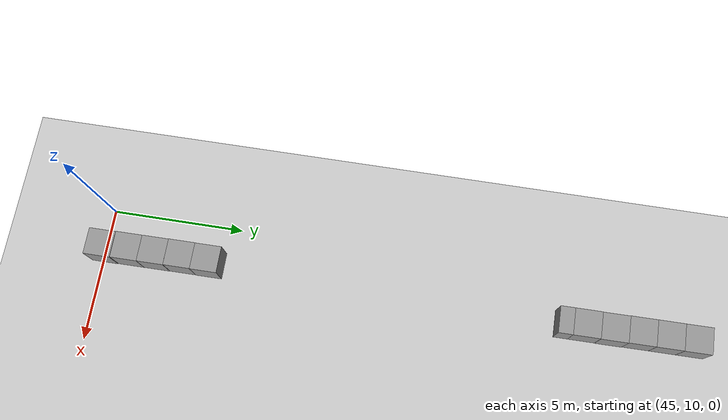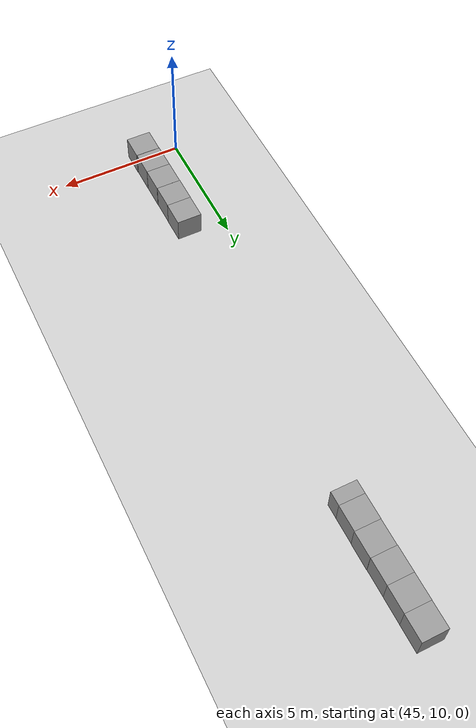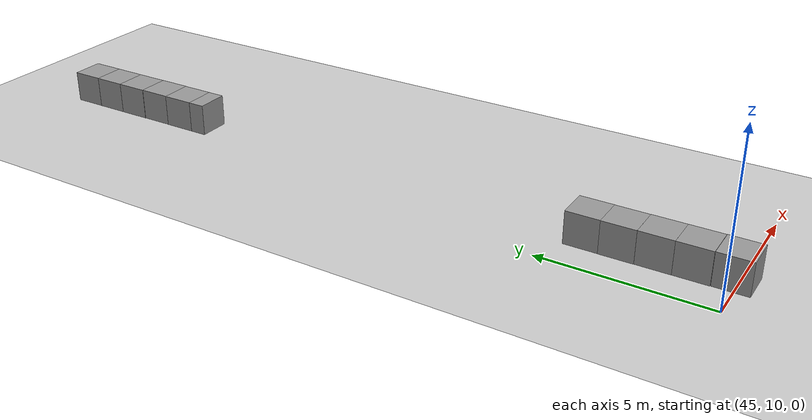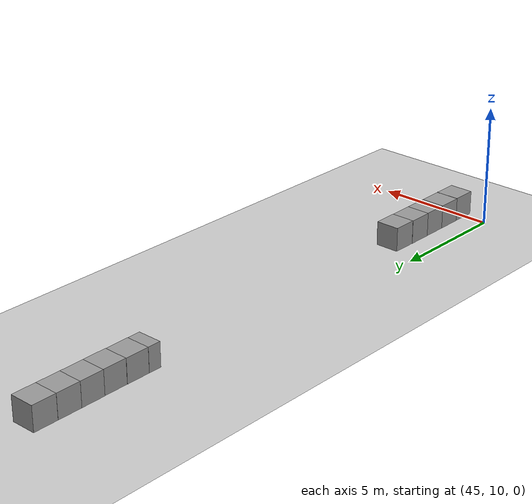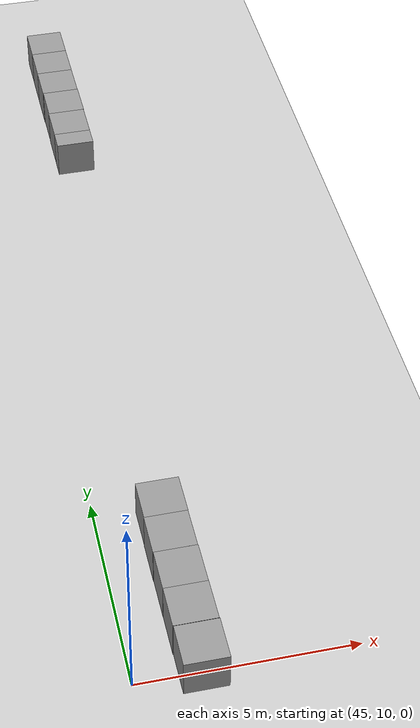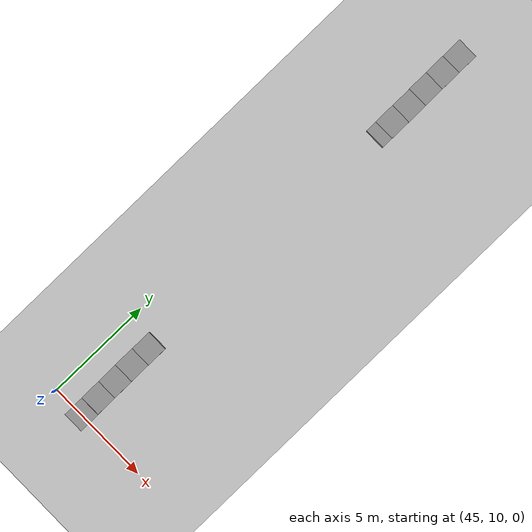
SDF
<sdf version="1.7">
 <world name="default">
  <model name="ground_plane">
   <static>1</static>
   <link name="link">
    <collision name="collision">
     <geometry><plane><normal>0 0 1</normal><size>100 100</size></plane></geometry>
     <surface>
      <contact><collide_bitmask>65535</collide_bitmask></contact>
      <friction><ode><mu>100</mu><mu2>50</mu2></ode></friction>
     </surface>
    </collision>
    <visual name="visual">
     <cast_shadows>0</cast_shadows>
     <geometry><plane><normal>0 0 1</normal><size>100 100</size></plane></geometry>
     <material>
      <script><uri>file://media/materials/scripts/gazebo.material</uri><name>Gazebo/Grey</name></script>
     </material>
    </visual>
   </link>
  </model>
  <model name="unit_box_13">
   <pose>46.717 32.2491 0.499995 1e-05 -0 0.007907</pose>
   <link name="link">
    <inertial>
     <mass>1</mass>
     <inertia>
      <ixx>0.166667</ixx>
      <ixy>0</ixy>
      <ixz>0</ixz>
      <iyy>0.166667</iyy>
      <iyz>0</iyz>
      <izz>0.166667</izz>
     </inertia>
    </inertial>
    <collision name="collision"><geometry><box><size>1 1 1</size></box></geometry></collision>
    <visual name="visual">
     <geometry><box><size>1 1 1</size></box></geometry>
     <material>
      <script><name>Gazebo/Grey</name><uri>file://media/materials/scripts/gazebo.material</uri></script>
     </material>
    </visual>
   </link>
  </model>
  <model name="unit_box_14">
   <pose>46.7218 31.2491 0.499995 1e-05 -0 0.007908</pose>
   <link name="link">
    <inertial>
     <mass>1</mass>
     <inertia>
      <ixx>0.166667</ixx>
      <ixy>0</ixy>
      <ixz>0</ixz>
      <iyy>0.166667</iyy>
      <iyz>0</iyz>
      <izz>0.166667</izz>
     </inertia>
    </inertial>
    <collision name="collision"><geometry><box><size>1 1 1</size></box></geometry></collision>
    <visual name="visual">
     <geometry><box><size>1 1 1</size></box></geometry>
     <material>
      <script><name>Gazebo/Grey</name><uri>file://media/materials/scripts/gazebo.material</uri></script>
     </material>
    </visual>
   </link>
  </model>
  <model name="unit_box_15">
   <pose>46.7286 30.2491 0.499995 1e-05 -0 0.007908</pose>
   <link name="link">
    <inertial>
     <mass>1</mass>
     <inertia>
      <ixx>0.166667</ixx>
      <ixy>0</ixy>
      <ixz>0</ixz>
      <iyy>0.166667</iyy>
      <iyz>0</iyz>
      <izz>0.166667</izz>
     </inertia>
    </inertial>
    <collision name="collision"><geometry><box><size>1 1 1</size></box></geometry></collision>
    <visual name="visual">
     <geometry><box><size>1 1 1</size></box></geometry>
     <material>
      <script><name>Gazebo/Grey</name><uri>file://media/materials/scripts/gazebo.material</uri></script>
     </material>
    </visual>
   </link>
  </model>
  <model name="unit_box_16">
   <pose>46.7446 29.2492 0.499995 1e-05 -0 0.007906</pose>
   <link name="link">
    <inertial>
     <mass>1</mass>
     <inertia>
      <ixx>0.166667</ixx>
      <ixy>0</ixy>
      <ixz>0</ixz>
      <iyy>0.166667</iyy>
      <iyz>0</iyz>
      <izz>0.166667</izz>
     </inertia>
    </inertial>
    <collision name="collision"><geometry><box><size>1 1 1</size></box></geometry></collision>
    <visual name="visual">
     <geometry><box><size>1 1 1</size></box></geometry>
     <material>
      <script><name>Gazebo/Grey</name><uri>file://media/materials/scripts/gazebo.material</uri></script>
     </material>
    </visual>
   </link>
  </model>
  <model name="unit_box_17">
   <pose>46.7436 28.2492 0.499995 -1e-05 0 0.007903</pose>
   <link name="link">
    <inertial>
     <mass>1</mass>
     <inertia>
      <ixx>0.166667</ixx>
      <ixy>0</ixy>
      <ixz>0</ixz>
      <iyy>0.166667</iyy>
      <iyz>0</iyz>
      <izz>0.166667</izz>
     </inertia>
    </inertial>
    <collision name="collision"><geometry><box><size>1 1 1</size></box></geometry></collision>
    <visual name="visual">
     <geometry><box><size>1 1 1</size></box></geometry>
     <material>
      <script><name>Gazebo/Grey</name><uri>file://media/materials/scripts/gazebo.material</uri></script>
     </material>
    </visual>
   </link>
  </model>
  <model name="unit_box_18">
   <pose>46.7467 27.4779 0.5 0 -0 0.007903</pose>
   <link name="link">
    <inertial>
     <mass>1</mass>
     <inertia>
      <ixx>0.166667</ixx>
      <ixy>0</ixy>
      <ixz>0</ixz>
      <iyy>0.166667</iyy>
      <iyz>0</iyz>
      <izz>0.166667</izz>
     </inertia>
    </inertial>
    <collision name="collision"><geometry><box><size>1 0.542564 1</size></box></geometry></collision>
    <visual name="visual">
     <geometry><box><size>1 0.542564 1</size></box></geometry>
     <material>
      <script><name>Gazebo/Grey</name><uri>file://media/materials/scripts/gazebo.material</uri></script>
     </material>
    </visual>
   </link>
  </model>
  <model name="unit_box_24">
   <pose>46.5053 10.072 0.499995 0 1e-05 -1e-06</pose>
   <link name="link">
    <inertial>
     <mass>1</mass>
     <inertia>
      <ixx>0.166667</ixx>
      <ixy>0</ixy>
      <ixz>0</ixz>
      <iyy>0.166667</iyy>
      <iyz>0</iyz>
      <izz>0.166667</izz>
     </inertia>
    </inertial>
    <collision name="collision"><geometry><box><size>1 1 1</size></box></geometry></collision>
    <visual name="visual">
     <geometry><box><size>1 1 1</size></box></geometry>
     <material>
      <script><name>Gazebo/Grey</name><uri>file://media/materials/scripts/gazebo.material</uri></script>
     </material>
    </visual>
   </link>
  </model>
  <model name="unit_box_25">
   <pose>46.4924 11.0799 0.499995 -1e-05 0 0.003417</pose>
   <link name="link">
    <inertial>
     <mass>1</mass>
     <inertia>
      <ixx>0.166667</ixx>
      <ixy>0</ixy>
      <ixz>0</ixz>
      <iyy>0.166667</iyy>
      <iyz>0</iyz>
      <izz>0.166667</izz>
     </inertia>
    </inertial>
    <collision name="collision"><geometry><box><size>1 1 1</size></box></geometry></collision>
    <visual name="visual">
     <geometry><box><size>1 1 1</size></box></geometry>
     <material>
      <script><name>Gazebo/Grey</name><uri>file://media/materials/scripts/gazebo.material</uri></script>
     </material>
    </visual>
   </link>
  </model>
  <model name="unit_box_26">
   <pose>46.4865 12.08 0.499995 0 -1e-05 0.003228</pose>
   <link name="link">
    <inertial>
     <mass>1</mass>
     <inertia>
      <ixx>0.166667</ixx>
      <ixy>0</ixy>
      <ixz>0</ixz>
      <iyy>0.166667</iyy>
      <iyz>0</iyz>
      <izz>0.166667</izz>
     </inertia>
    </inertial>
    <collision name="collision"><geometry><box><size>1 1 1</size></box></geometry></collision>
    <visual name="visual">
     <geometry><box><size>1 1 1</size></box></geometry>
     <material>
      <script><name>Gazebo/Grey</name><uri>file://media/materials/scripts/gazebo.material</uri></script>
     </material>
    </visual>
   </link>
  </model>
  <model name="unit_box_27">
   <pose>46.476 13.0803 0.499995 0 -1e-05 0.003113</pose>
   <link name="link">
    <inertial>
     <mass>1</mass>
     <inertia>
      <ixx>0.166667</ixx>
      <ixy>0</ixy>
      <ixz>0</ixz>
      <iyy>0.166667</iyy>
      <iyz>0</iyz>
      <izz>0.166667</izz>
     </inertia>
    </inertial>
    <collision name="collision"><geometry><box><size>1 1 1</size></box></geometry></collision>
    <visual name="visual">
     <geometry><box><size>1 1 1</size></box></geometry>
     <material>
      <script><name>Gazebo/Grey</name><uri>file://media/materials/scripts/gazebo.material</uri></script>
     </material>
    </visual>
   </link>
  </model>
  <model name="unit_box_28">
   <pose>46.4785 14.0803 0.499995 0 -1e-05 0.003116</pose>
   <link name="link">
    <inertial>
     <mass>1</mass>
     <inertia>
      <ixx>0.166667</ixx>
      <ixy>0</ixy>
      <ixz>0</ixz>
      <iyy>0.166667</iyy>
      <iyz>0</iyz>
      <izz>0.166667</izz>
     </inertia>
    </inertial>
    <collision name="collision"><geometry><box><size>1 1 1</size></box></geometry></collision>
    <visual name="visual">
     <geometry><box><size>1 1 1</size></box></geometry>
     <material>
      <script><name>Gazebo/Grey</name><uri>file://media/materials/scripts/gazebo.material</uri></script>
     </material>
    </visual>
   </link>
  </model>
 </world>
</sdf>
